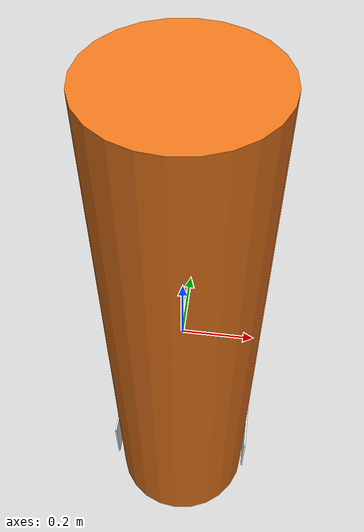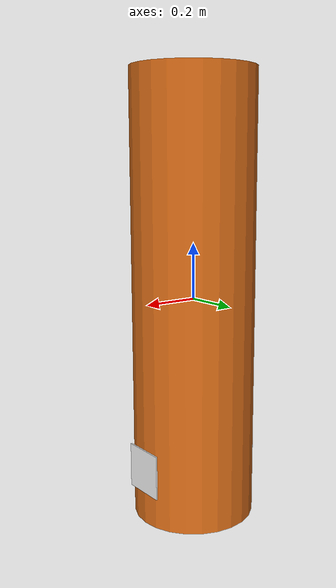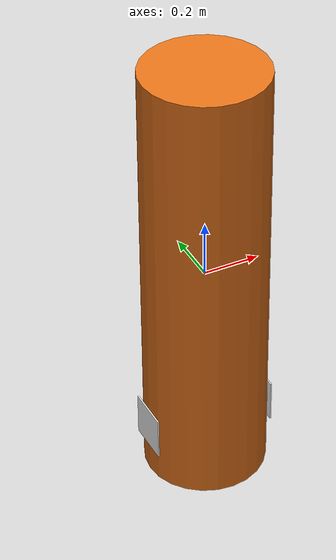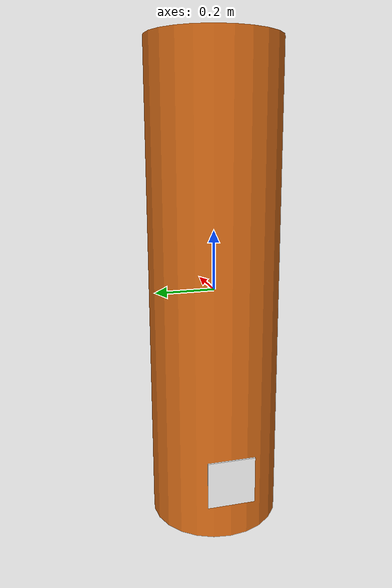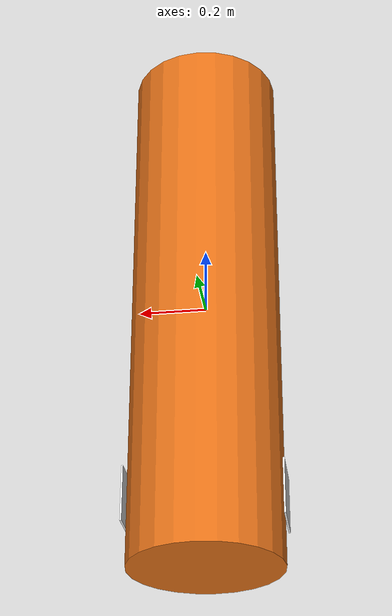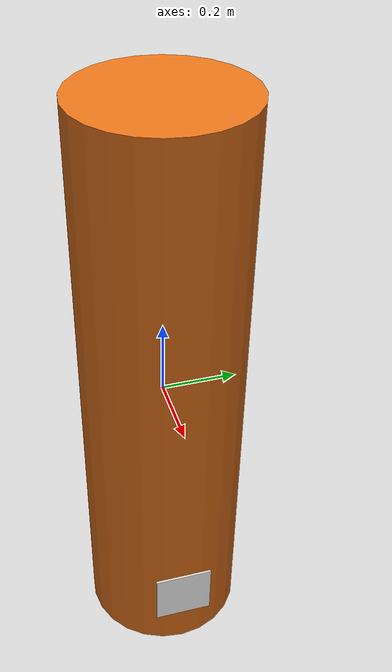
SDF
<?xml version="1.0"?>
<sdf version="1.8">
  <model name="worker_target">
    <static>true</static>

    <link name="body">
      <pose>0 0 0 0 0 0</pose>

      <!-- LiDAR 에 잡히는 충돌체 -->
      <collision name="body_collision">
        <geometry>
          <cylinder><radius>0.22</radius><length>1.6</length></cylinder>
        </geometry>
      </collision>

      <!-- 눈으로 확인하기 위한 시각 모델 (주황색 = 작업조끼 느낌) -->
      <visual name="body_visual">
        <geometry>
          <cylinder><radius>0.22</radius><length>1.6</length></cylinder>
        </geometry>
        <material>
          <ambient>0.9 0.45 0.1 1</ambient>
          <diffuse>0.9 0.45 0.1 1</diffuse>
        </material>
      </visual>

      <visual name="apriltag_front">
        <!-- 원기둥 표면(r=0.22) 바로 바깥 +x 면 -->
        <pose>0.2235 0 -0.60 0 0 0</pose>
        <geometry>
          <box><size>0.005 0.16 0.16</size></box>
        </geometry>
        <material>
          <diffuse>1 1 1 1</diffuse><specular>0 0 0 1</specular>
          <pbr><metal>
            <albedo_map>tag36_11_00000.png</albedo_map>
            <metalness>0.0</metalness><roughness>1.0</roughness>
          </metal></pbr>
        </material>
      </visual>
      <visual name="apriltag_back">
        <!-- -x 면 (로봇이 뒤따라올 때 보는 쪽) -->
        <pose>-0.2235 0 -0.60 0 0 0</pose>
        <geometry>
          <box><size>0.005 0.16 0.16</size></box>
        </geometry>
        <material>
          <diffuse>1 1 1 1</diffuse><specular>0 0 0 1</specular>
          <pbr><metal>
            <albedo_map>tag36_11_00000.png</albedo_map>
            <metalness>0.0</metalness><roughness>1.0</roughness>
          </metal></pbr>
        </material>
      </visual>
    </link>
  </model>
</sdf>
